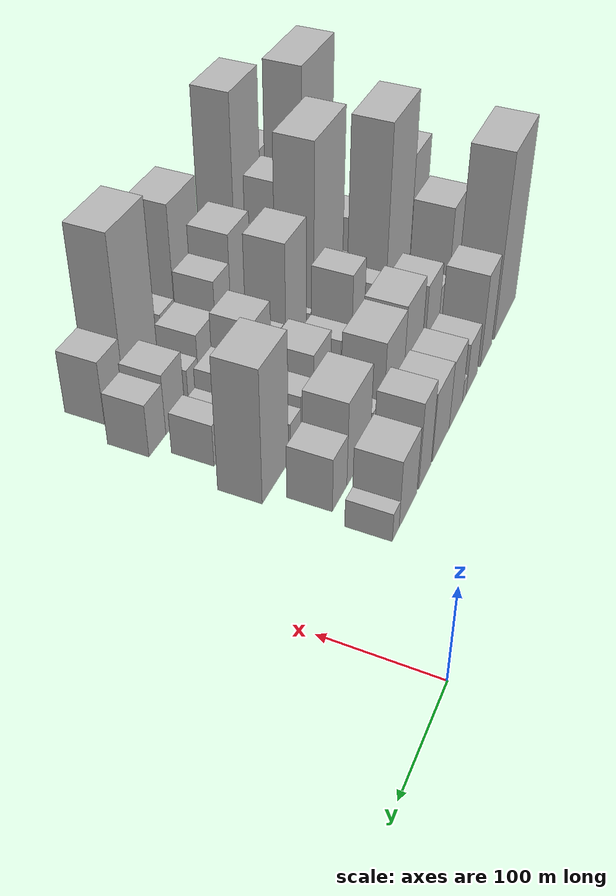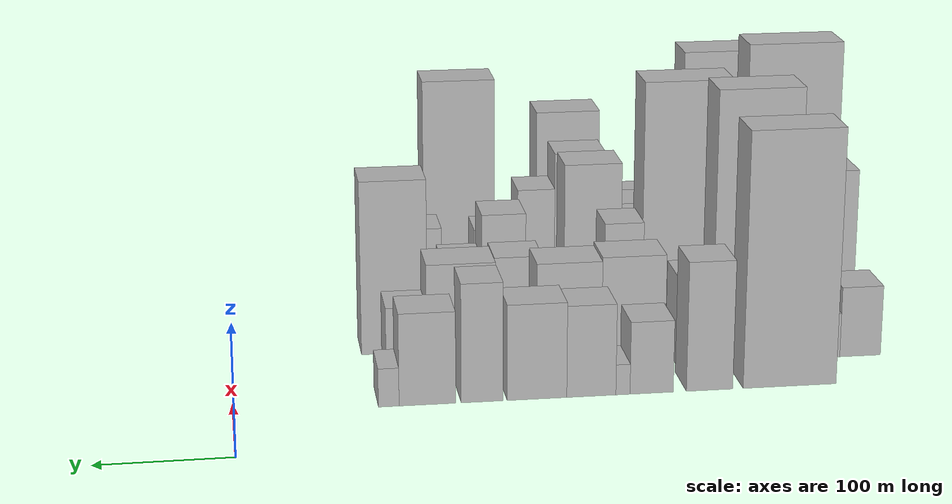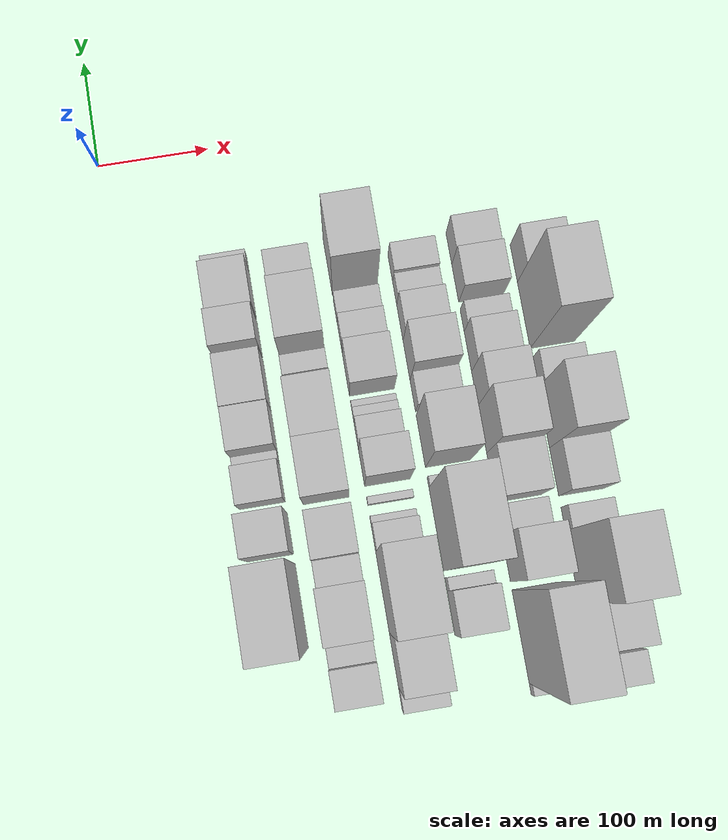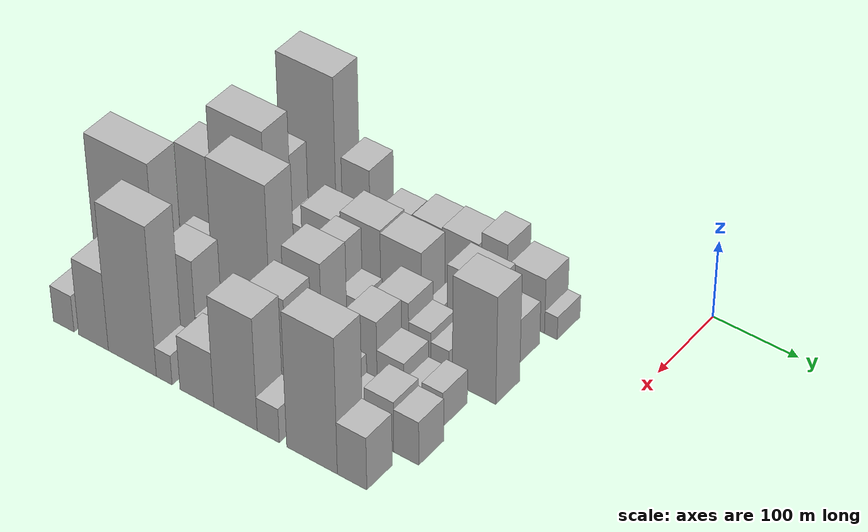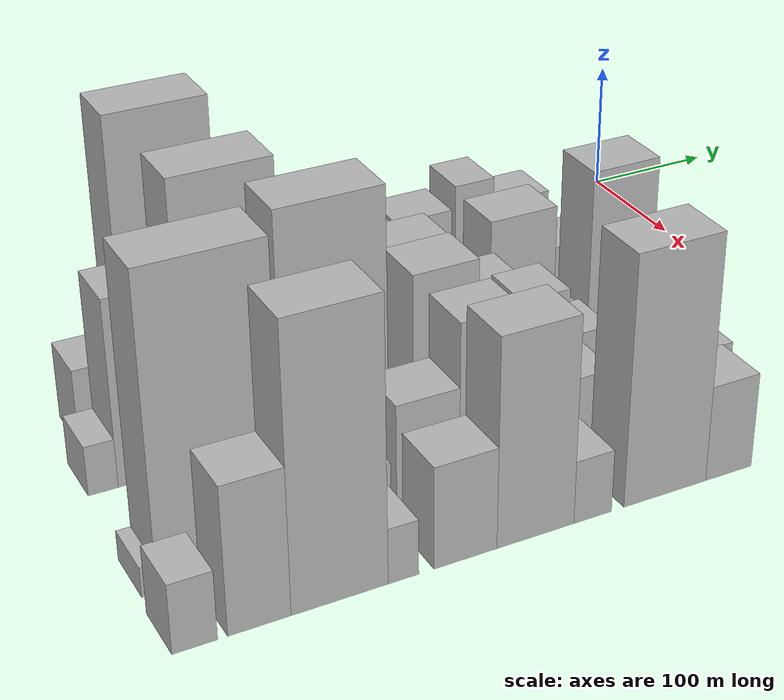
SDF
<sdf version="1.6">
 <world name="default">
  <model name="building_11">
   <static>1</static>
   <pose>100.0000 -417.7875 0 0.000000 0.000000 0.000000</pose>
   <link name="link">
    <pose>0 0 100.50 0 0 0</pose>
    <collision name="collision"><geometry><box><size>40.0000 72.0844 201.0000</size></box></geometry></collision>
    <visual name="visual">
     <cast_shadows>0</cast_shadows>
     <geometry><box><size>40.0000 72.0844 201.0000</size></box></geometry>
     <material>
      <script>
       <uri>model://HANNAS_wall/materials/scripts</uri>
       <uri>model://HANNAS_wall/materials/textures</uri>
       <name>vrc/HANNAS_wall</name>
      </script>
     </material>
    </visual>
   </link>
  </model>
  <model name="building_12">
   <static>1</static>
   <pose>100.0000 -355.9250 0 0.000000 0.000000 0.000000</pose>
   <link name="link">
    <pose>0 0 51.00 0 0 0</pose>
    <collision name="collision"><geometry><box><size>40.0000 35.6405 102.0000</size></box></geometry></collision>
    <visual name="visual">
     <cast_shadows>0</cast_shadows>
     <geometry><box><size>40.0000 35.6405 102.0000</size></box></geometry>
     <material>
      <script>
       <uri>model://HANNAS_wall/materials/scripts</uri>
       <uri>model://HANNAS_wall/materials/textures</uri>
       <name>vrc/HANNAS_wall</name>
      </script>
     </material>
    </visual>
   </link>
  </model>
  <model name="building_13">
   <static>1</static>
   <pose>100.0000 -311.5917 0 0.000000 0.000000 0.000000</pose>
   <link name="link">
    <pose>0 0 28.50 0 0 0</pose>
    <collision name="collision"><geometry><box><size>40.0000 33.0261 57.0000</size></box></geometry></collision>
    <visual name="visual">
     <cast_shadows>0</cast_shadows>
     <geometry><box><size>40.0000 33.0261 57.0000</size></box></geometry>
     <material>
      <script>
       <uri>model://HANNAS_wall/materials/scripts</uri>
       <uri>model://HANNAS_wall/materials/textures</uri>
       <name>vrc/HANNAS_wall</name>
      </script>
     </material>
    </visual>
   </link>
  </model>
  <model name="building_14">
   <static>1</static>
   <pose>100.0000 -289.7027 0 0.000000 0.000000 0.000000</pose>
   <link name="link">
    <pose>0 0 12.00 0 0 0</pose>
    <collision name="collision"><geometry><box><size>40.0000 10.7521 24.0000</size></box></geometry></collision>
    <visual name="visual">
     <cast_shadows>0</cast_shadows>
     <geometry><box><size>40.0000 10.7521 24.0000</size></box></geometry>
     <material>
      <script>
       <uri>model://HANNAS_wall/materials/scripts</uri>
       <uri>model://HANNAS_wall/materials/textures</uri>
       <name>vrc/HANNAS_wall</name>
      </script>
     </material>
    </visual>
   </link>
  </model>
  <model name="building_15">
   <static>1</static>
   <pose>100.0000 -265.7249 0 0.000000 0.000000 0.000000</pose>
   <link name="link">
    <pose>0 0 36.00 0 0 0</pose>
    <collision name="collision"><geometry><box><size>40.0000 37.2034 72.0000</size></box></geometry></collision>
    <visual name="visual">
     <cast_shadows>0</cast_shadows>
     <geometry><box><size>40.0000 37.2034 72.0000</size></box></geometry>
     <material>
      <script>
       <uri>model://HANNAS_wall/materials/scripts</uri>
       <uri>model://HANNAS_wall/materials/textures</uri>
       <name>vrc/HANNAS_wall</name>
      </script>
     </material>
    </visual>
   </link>
  </model>
  <model name="building_16">
   <static>1</static>
   <pose>100.0000 -224.6815 0 0.000000 0.000000 0.000000</pose>
   <link name="link">
    <pose>0 0 37.50 0 0 0</pose>
    <collision name="collision"><geometry><box><size>40.0000 44.8836 75.0000</size></box></geometry></collision>
    <visual name="visual">
     <cast_shadows>0</cast_shadows>
     <geometry><box><size>40.0000 44.8836 75.0000</size></box></geometry>
     <material>
      <script>
       <uri>model://HANNAS_wall/materials/scripts</uri>
       <uri>model://HANNAS_wall/materials/textures</uri>
       <name>vrc/HANNAS_wall</name>
      </script>
     </material>
    </visual>
   </link>
  </model>
  <model name="building_17">
   <static>1</static>
   <pose>100.0000 -183.5330 0 0.000000 0.000000 0.000000</pose>
   <link name="link">
    <pose>0 0 46.50 0 0 0</pose>
    <collision name="collision"><geometry><box><size>40.0000 31.4134 93.0000</size></box></geometry></collision>
    <visual name="visual">
     <cast_shadows>0</cast_shadows>
     <geometry><box><size>40.0000 31.4134 93.0000</size></box></geometry>
     <material>
      <script>
       <uri>model://HANNAS_wall/materials/scripts</uri>
       <uri>model://HANNAS_wall/materials/textures</uri>
       <name>vrc/HANNAS_wall</name>
      </script>
     </material>
    </visual>
   </link>
  </model>
  <model name="building_18">
   <static>1</static>
   <pose>100.0000 -142.7192 0 0.000000 0.000000 0.000000</pose>
   <link name="link">
    <pose>0 0 36.00 0 0 0</pose>
    <collision name="collision"><geometry><box><size>40.0000 42.2141 72.0000</size></box></geometry></collision>
    <visual name="visual">
     <cast_shadows>0</cast_shadows>
     <geometry><box><size>40.0000 42.2141 72.0000</size></box></geometry>
     <material>
      <script>
       <uri>model://HANNAS_wall/materials/scripts</uri>
       <uri>model://HANNAS_wall/materials/textures</uri>
       <name>vrc/HANNAS_wall</name>
      </script>
     </material>
    </visual>
   </link>
  </model>
  <model name="building_19">
   <static>1</static>
   <pose>100.0000 -113.9480 0 0.000000 0.000000 0.000000</pose>
   <link name="link">
    <pose>0 0 15.00 0 0 0</pose>
    <collision name="collision"><geometry><box><size>40.0000 15.3283 30.0000</size></box></geometry></collision>
    <visual name="visual">
     <cast_shadows>0</cast_shadows>
     <geometry><box><size>40.0000 15.3283 30.0000</size></box></geometry>
     <material>
      <script>
       <uri>model://HANNAS_wall/materials/scripts</uri>
       <uri>model://HANNAS_wall/materials/textures</uri>
       <name>vrc/HANNAS_wall</name>
      </script>
     </material>
    </visual>
   </link>
  </model>
  <model name="building_61">
   <static>1</static>
   <pose>155.0000 -488.7438 0 0.000000 0.000000 0.000000</pose>
   <link name="link">
    <pose>0 0 28.50 0 0 0</pose>
    <collision name="collision"><geometry><box><size>40.0000 32.7782 57.0000</size></box></geometry></collision>
    <visual name="visual">
     <cast_shadows>0</cast_shadows>
     <geometry><box><size>40.0000 32.7782 57.0000</size></box></geometry>
     <material>
      <script>
       <uri>model://HANNAS_wall/materials/scripts</uri>
       <uri>model://HANNAS_wall/materials/textures</uri>
       <name>vrc/HANNAS_wall</name>
      </script>
     </material>
    </visual>
   </link>
  </model>
  <model name="building_62">
   <static>1</static>
   <pose>155.0000 -462.2147 0 0.000000 0.000000 0.000000</pose>
   <link name="link">
    <pose>0 0 18.00 0 0 0</pose>
    <collision name="collision"><geometry><box><size>40.0000 20.2800 36.0000</size></box></geometry></collision>
    <visual name="visual">
     <cast_shadows>0</cast_shadows>
     <geometry><box><size>40.0000 20.2800 36.0000</size></box></geometry>
     <material>
      <script>
       <uri>model://HANNAS_wall/materials/scripts</uri>
       <uri>model://HANNAS_wall/materials/textures</uri>
       <name>vrc/HANNAS_wall</name>
      </script>
     </material>
    </visual>
   </link>
  </model>
  <model name="building_63">
   <static>1</static>
   <pose>155.0000 -429.1006 0 0.000000 0.000000 0.000000</pose>
   <link name="link">
    <pose>0 0 58.50 0 0 0</pose>
    <collision name="collision"><geometry><box><size>40.0000 45.9483 117.0000</size></box></geometry></collision>
    <visual name="visual">
     <cast_shadows>0</cast_shadows>
     <geometry><box><size>40.0000 45.9483 117.0000</size></box></geometry>
     <material>
      <script>
       <uri>model://HANNAS_wall/materials/scripts</uri>
       <uri>model://HANNAS_wall/materials/textures</uri>
       <name>vrc/HANNAS_wall</name>
      </script>
     </material>
    </visual>
   </link>
  </model>
  <model name="building_64">
   <static>1</static>
   <pose>155.0000 -394.5628 0 0.000000 0.000000 0.000000</pose>
   <link name="link">
    <pose>0 0 21.00 0 0 0</pose>
    <collision name="collision"><geometry><box><size>40.0000 23.1272 42.0000</size></box></geometry></collision>
    <visual name="visual">
     <cast_shadows>0</cast_shadows>
     <geometry><box><size>40.0000 23.1272 42.0000</size></box></geometry>
     <material>
      <script>
       <uri>model://HANNAS_wall/materials/scripts</uri>
       <uri>model://HANNAS_wall/materials/textures</uri>
       <name>vrc/HANNAS_wall</name>
      </script>
     </material>
    </visual>
   </link>
  </model>
  <model name="building_65">
   <static>1</static>
   <pose>155.0000 -362.5040 0 0.000000 0.000000 0.000000</pose>
   <link name="link">
    <pose>0 0 36.00 0 0 0</pose>
    <collision name="collision"><geometry><box><size>40.0000 40.9906 72.0000</size></box></geometry></collision>
    <visual name="visual">
     <cast_shadows>0</cast_shadows>
     <geometry><box><size>40.0000 40.9906 72.0000</size></box></geometry>
     <material>
      <script>
       <uri>model://HANNAS_wall/materials/scripts</uri>
       <uri>model://HANNAS_wall/materials/textures</uri>
       <name>vrc/HANNAS_wall</name>
      </script>
     </material>
    </visual>
   </link>
  </model>
  <model name="building_66">
   <static>1</static>
   <pose>155.0000 -308.1487 0 0.000000 0.000000 0.000000</pose>
   <link name="link">
    <pose>0 0 45.00 0 0 0</pose>
    <collision name="collision"><geometry><box><size>40.0000 49.7200 90.0000</size></box></geometry></collision>
    <visual name="visual">
     <cast_shadows>0</cast_shadows>
     <geometry><box><size>40.0000 49.7200 90.0000</size></box></geometry>
     <material>
      <script>
       <uri>model://HANNAS_wall/materials/scripts</uri>
       <uri>model://HANNAS_wall/materials/textures</uri>
       <name>vrc/HANNAS_wall</name>
      </script>
     </material>
    </visual>
   </link>
  </model>
  <model name="building_67">
   <static>1</static>
   <pose>155.0000 -258.0169 0 0.000000 0.000000 0.000000</pose>
   <link name="link">
    <pose>0 0 43.50 0 0 0</pose>
    <collision name="collision"><geometry><box><size>40.0000 50.5435 87.0000</size></box></geometry></collision>
    <visual name="visual">
     <cast_shadows>0</cast_shadows>
     <geometry><box><size>40.0000 50.5435 87.0000</size></box></geometry>
     <material>
      <script>
       <uri>model://HANNAS_wall/materials/scripts</uri>
       <uri>model://HANNAS_wall/materials/textures</uri>
       <name>vrc/HANNAS_wall</name>
      </script>
     </material>
    </visual>
   </link>
  </model>
  <model name="building_68">
   <static>1</static>
   <pose>155.0000 -213.8691 0 0.000000 0.000000 0.000000</pose>
   <link name="link">
    <pose>0 0 16.50 0 0 0</pose>
    <collision name="collision"><geometry><box><size>40.0000 17.7522 33.0000</size></box></geometry></collision>
    <visual name="visual">
     <cast_shadows>0</cast_shadows>
     <geometry><box><size>40.0000 17.7522 33.0000</size></box></geometry>
     <material>
      <script>
       <uri>model://HANNAS_wall/materials/scripts</uri>
       <uri>model://HANNAS_wall/materials/textures</uri>
       <name>vrc/HANNAS_wall</name>
      </script>
     </material>
    </visual>
   </link>
  </model>
  <model name="building_69">
   <static>1</static>
   <pose>155.0000 -174.5108 0 0.000000 0.000000 0.000000</pose>
   <link name="link">
    <pose>0 0 45.00 0 0 0</pose>
    <collision name="collision"><geometry><box><size>40.0000 52.9642 90.0000</size></box></geometry></collision>
    <visual name="visual">
     <cast_shadows>0</cast_shadows>
     <geometry><box><size>40.0000 52.9642 90.0000</size></box></geometry>
     <material>
      <script>
       <uri>model://HANNAS_wall/materials/scripts</uri>
       <uri>model://HANNAS_wall/materials/textures</uri>
       <name>vrc/HANNAS_wall</name>
      </script>
     </material>
    </visual>
   </link>
  </model>
  <model name="building_70">
   <static>1</static>
   <pose>155.0000 -132.5153 0 0.000000 0.000000 0.000000</pose>
   <link name="link">
    <pose>0 0 28.50 0 0 0</pose>
    <collision name="collision"><geometry><box><size>40.0000 31.0269 57.0000</size></box></geometry></collision>
    <visual name="visual">
     <cast_shadows>0</cast_shadows>
     <geometry><box><size>40.0000 31.0269 57.0000</size></box></geometry>
     <material>
      <script>
       <uri>model://HANNAS_wall/materials/scripts</uri>
       <uri>model://HANNAS_wall/materials/textures</uri>
       <name>vrc/HANNAS_wall</name>
      </script>
     </material>
    </visual>
   </link>
  </model>
  <model name="building_115">
   <static>1</static>
   <pose>210.0000 -507.9227 0 0.000000 0.000000 0.000000</pose>
   <link name="link">
    <pose>0 0 18.00 0 0 0</pose>
    <collision name="collision"><geometry><box><size>40.0000 19.6754 36.0000</size></box></geometry></collision>
    <visual name="visual">
     <cast_shadows>0</cast_shadows>
     <geometry><box><size>40.0000 19.6754 36.0000</size></box></geometry>
     <material>
      <script>
       <uri>model://HANNAS_wall/materials/scripts</uri>
       <uri>model://HANNAS_wall/materials/textures</uri>
       <name>vrc/HANNAS_wall</name>
      </script>
     </material>
    </visual>
   </link>
  </model>
  <model name="building_116">
   <static>1</static>
   <pose>210.0000 -475.3395 0 0.000000 0.000000 0.000000</pose>
   <link name="link">
    <pose>0 0 67.50 0 0 0</pose>
    <collision name="collision"><geometry><box><size>40.0000 45.4910 135.0000</size></box></geometry></collision>
    <visual name="visual">
     <cast_shadows>0</cast_shadows>
     <geometry><box><size>40.0000 45.4910 135.0000</size></box></geometry>
     <material>
      <script>
       <uri>model://HANNAS_wall/materials/scripts</uri>
       <uri>model://HANNAS_wall/materials/textures</uri>
       <name>vrc/HANNAS_wall</name>
      </script>
     </material>
    </visual>
   </link>
  </model>
  <model name="building_117">
   <static>1</static>
   <pose>210.0000 -418.0287 0 0.000000 0.000000 0.000000</pose>
   <link name="link">
    <pose>0 0 102.00 0 0 0</pose>
    <collision name="collision"><geometry><box><size>40.0000 69.1306 204.0000</size></box></geometry></collision>
    <visual name="visual">
     <cast_shadows>0</cast_shadows>
     <geometry><box><size>40.0000 69.1306 204.0000</size></box></geometry>
     <material>
      <script>
       <uri>model://HANNAS_wall/materials/scripts</uri>
       <uri>model://HANNAS_wall/materials/textures</uri>
       <name>vrc/HANNAS_wall</name>
      </script>
     </material>
    </visual>
   </link>
  </model>
  <model name="building_118">
   <static>1</static>
   <pose>210.0000 -371.8410 0 0.000000 0.000000 0.000000</pose>
   <link name="link">
    <pose>0 0 22.50 0 0 0</pose>
    <collision name="collision"><geometry><box><size>40.0000 23.2447 45.0000</size></box></geometry></collision>
    <visual name="visual">
     <cast_shadows>0</cast_shadows>
     <geometry><box><size>40.0000 23.2447 45.0000</size></box></geometry>
     <material>
      <script>
       <uri>model://HANNAS_wall/materials/scripts</uri>
       <uri>model://HANNAS_wall/materials/textures</uri>
       <name>vrc/HANNAS_wall</name>
      </script>
     </material>
    </visual>
   </link>
  </model>
  <model name="building_119">
   <static>1</static>
   <pose>210.0000 -356.6154 0 0.000000 0.000000 0.000000</pose>
   <link name="link">
    <pose>0 0 9.00 0 0 0</pose>
    <collision name="collision"><geometry><box><size>40.0000 7.2066 18.0000</size></box></geometry></collision>
    <visual name="visual">
     <cast_shadows>0</cast_shadows>
     <geometry><box><size>40.0000 7.2066 18.0000</size></box></geometry>
     <material>
      <script>
       <uri>model://HANNAS_wall/materials/scripts</uri>
       <uri>model://HANNAS_wall/materials/textures</uri>
       <name>vrc/HANNAS_wall</name>
      </script>
     </material>
    </visual>
   </link>
  </model>
  <model name="building_120">
   <static>1</static>
   <pose>210.0000 -339.5552 0 0.000000 0.000000 0.000000</pose>
   <link name="link">
    <pose>0 0 7.50 0 0 0</pose>
    <collision name="collision"><geometry><box><size>40.0000 6.9137 15.0000</size></box></geometry></collision>
    <visual name="visual">
     <cast_shadows>0</cast_shadows>
     <geometry><box><size>40.0000 6.9137 15.0000</size></box></geometry>
     <material>
      <script>
       <uri>model://HANNAS_wall/materials/scripts</uri>
       <uri>model://HANNAS_wall/materials/textures</uri>
       <name>vrc/HANNAS_wall</name>
      </script>
     </material>
    </visual>
   </link>
  </model>
  <model name="building_121">
   <static>1</static>
   <pose>210.0000 -310.5676 0 0.000000 0.000000 0.000000</pose>
   <link name="link">
    <pose>0 0 49.50 0 0 0</pose>
    <collision name="collision"><geometry><box><size>40.0000 31.0616 99.0000</size></box></geometry></collision>
    <visual name="visual">
     <cast_shadows>0</cast_shadows>
     <geometry><box><size>40.0000 31.0616 99.0000</size></box></geometry>
     <material>
      <script>
       <uri>model://HANNAS_wall/materials/scripts</uri>
       <uri>model://HANNAS_wall/materials/textures</uri>
       <name>vrc/HANNAS_wall</name>
      </script>
     </material>
    </visual>
   </link>
  </model>
  <model name="building_122">
   <static>1</static>
   <pose>210.0000 -282.2930 0 0.000000 0.000000 0.000000</pose>
   <link name="link">
    <pose>0 0 22.50 0 0 0</pose>
    <collision name="collision"><geometry><box><size>40.0000 25.4875 45.0000</size></box></geometry></collision>
    <visual name="visual">
     <cast_shadows>0</cast_shadows>
     <geometry><box><size>40.0000 25.4875 45.0000</size></box></geometry>
     <material>
      <script>
       <uri>model://HANNAS_wall/materials/scripts</uri>
       <uri>model://HANNAS_wall/materials/textures</uri>
       <name>vrc/HANNAS_wall</name>
      </script>
     </material>
    </visual>
   </link>
  </model>
  <model name="building_123">
   <static>1</static>
   <pose>210.0000 -264.1106 0 0.000000 0.000000 0.000000</pose>
   <link name="link">
    <pose>0 0 12.00 0 0 0</pose>
    <collision name="collision"><geometry><box><size>40.0000 10.8773 24.0000</size></box></geometry></collision>
    <visual name="visual">
     <cast_shadows>0</cast_shadows>
     <geometry><box><size>40.0000 10.8773 24.0000</size></box></geometry>
     <material>
      <script>
       <uri>model://HANNAS_wall/materials/scripts</uri>
       <uri>model://HANNAS_wall/materials/textures</uri>
       <name>vrc/HANNAS_wall</name>
      </script>
     </material>
    </visual>
   </link>
  </model>
  <model name="building_124">
   <static>1</static>
   <pose>210.0000 -255.1590 0 0.000000 0.000000 0.000000</pose>
   <link name="link">
    <pose>0 0 7.50 0 0 0</pose>
    <collision name="collision"><geometry><box><size>40.0000 7.0258 15.0000</size></box></geometry></collision>
    <visual name="visual">
     <cast_shadows>0</cast_shadows>
     <geometry><box><size>40.0000 7.0258 15.0000</size></box></geometry>
     <material>
      <script>
       <uri>model://HANNAS_wall/materials/scripts</uri>
       <uri>model://HANNAS_wall/materials/textures</uri>
       <name>vrc/HANNAS_wall</name>
      </script>
     </material>
    </visual>
   </link>
  </model>
  <model name="building_125">
   <static>1</static>
   <pose>210.0000 -226.5296 0 0.000000 0.000000 0.000000</pose>
   <link name="link">
    <pose>0 0 37.50 0 0 0</pose>
    <collision name="collision"><geometry><box><size>40.0000 38.2331 75.0000</size></box></geometry></collision>
    <visual name="visual">
     <cast_shadows>0</cast_shadows>
     <geometry><box><size>40.0000 38.2331 75.0000</size></box></geometry>
     <material>
      <script>
       <uri>model://HANNAS_wall/materials/scripts</uri>
       <uri>model://HANNAS_wall/materials/textures</uri>
       <name>vrc/HANNAS_wall</name>
      </script>
     </material>
    </visual>
   </link>
  </model>
  <model name="building_126">
   <static>1</static>
   <pose>210.0000 -194.0156 0 0.000000 0.000000 0.000000</pose>
   <link name="link">
    <pose>0 0 25.50 0 0 0</pose>
    <collision name="collision"><geometry><box><size>40.0000 26.7947 51.0000</size></box></geometry></collision>
    <visual name="visual">
     <cast_shadows>0</cast_shadows>
     <geometry><box><size>40.0000 26.7947 51.0000</size></box></geometry>
     <material>
      <script>
       <uri>model://HANNAS_wall/materials/scripts</uri>
       <uri>model://HANNAS_wall/materials/textures</uri>
       <name>vrc/HANNAS_wall</name>
      </script>
     </material>
    </visual>
   </link>
  </model>
  <model name="building_127">
   <static>1</static>
   <pose>210.0000 -169.5033 0 0.000000 0.000000 0.000000</pose>
   <link name="link">
    <pose>0 0 19.50 0 0 0</pose>
    <collision name="collision"><geometry><box><size>40.0000 22.2299 39.0000</size></box></geometry></collision>
    <visual name="visual">
     <cast_shadows>0</cast_shadows>
     <geometry><box><size>40.0000 22.2299 39.0000</size></box></geometry>
     <material>
      <script>
       <uri>model://HANNAS_wall/materials/scripts</uri>
       <uri>model://HANNAS_wall/materials/textures</uri>
       <name>vrc/HANNAS_wall</name>
      </script>
     </material>
    </visual>
   </link>
  </model>
  <model name="building_128">
   <static>1</static>
   <pose>210.0000 -128.3970 0 0.000000 0.000000 0.000000</pose>
   <link name="link">
    <pose>0 0 70.50 0 0 0</pose>
    <collision name="collision"><geometry><box><size>40.0000 51.9827 141.0000</size></box></geometry></collision>
    <visual name="visual">
     <cast_shadows>0</cast_shadows>
     <geometry><box><size>40.0000 51.9827 141.0000</size></box></geometry>
     <material>
      <script>
       <uri>model://HANNAS_wall/materials/scripts</uri>
       <uri>model://HANNAS_wall/materials/textures</uri>
       <name>vrc/HANNAS_wall</name>
      </script>
     </material>
    </visual>
   </link>
  </model>
  <model name="building_169">
   <static>1</static>
   <pose>265.0000 -444.9240 0 0.000000 0.000000 0.000000</pose>
   <link name="link">
    <pose>0 0 33.00 0 0 0</pose>
    <collision name="collision"><geometry><box><size>40.0000 37.9621 66.0000</size></box></geometry></collision>
    <visual name="visual">
     <cast_shadows>0</cast_shadows>
     <geometry><box><size>40.0000 37.9621 66.0000</size></box></geometry>
     <material>
      <script>
       <uri>model://HANNAS_wall/materials/scripts</uri>
       <uri>model://HANNAS_wall/materials/textures</uri>
       <name>vrc/HANNAS_wall</name>
      </script>
     </material>
    </visual>
   </link>
  </model>
  <model name="building_170">
   <static>1</static>
   <pose>265.0000 -420.4263 0 0.000000 0.000000 0.000000</pose>
   <link name="link">
    <pose>0 0 13.50 0 0 0</pose>
    <collision name="collision"><geometry><box><size>40.0000 11.0332 27.0000</size></box></geometry></collision>
    <visual name="visual">
     <cast_shadows>0</cast_shadows>
     <geometry><box><size>40.0000 11.0332 27.0000</size></box></geometry>
     <material>
      <script>
       <uri>model://HANNAS_wall/materials/scripts</uri>
       <uri>model://HANNAS_wall/materials/textures</uri>
       <name>vrc/HANNAS_wall</name>
      </script>
     </material>
    </visual>
   </link>
  </model>
  <model name="building_171">
   <static>1</static>
   <pose>265.0000 -372.5390 0 0.000000 0.000000 0.000000</pose>
   <link name="link">
    <pose>0 0 99.00 0 0 0</pose>
    <collision name="collision"><geometry><box><size>40.0000 72.7414 198.0000</size></box></geometry></collision>
    <visual name="visual">
     <cast_shadows>0</cast_shadows>
     <geometry><box><size>40.0000 72.7414 198.0000</size></box></geometry>
     <material>
      <script>
       <uri>model://HANNAS_wall/materials/scripts</uri>
       <uri>model://HANNAS_wall/materials/textures</uri>
       <name>vrc/HANNAS_wall</name>
      </script>
     </material>
    </visual>
   </link>
  </model>
  <model name="building_172">
   <static>1</static>
   <pose>265.0000 -331.8487 0 0.000000 0.000000 0.000000</pose>
   <link name="link">
    <pose>0 0 9.00 0 0 0</pose>
    <collision name="collision"><geometry><box><size>40.0000 8.6392 18.0000</size></box></geometry></collision>
    <visual name="visual">
     <cast_shadows>0</cast_shadows>
     <geometry><box><size>40.0000 8.6392 18.0000</size></box></geometry>
     <material>
      <script>
       <uri>model://HANNAS_wall/materials/scripts</uri>
       <uri>model://HANNAS_wall/materials/textures</uri>
       <name>vrc/HANNAS_wall</name>
      </script>
     </material>
    </visual>
   </link>
  </model>
  <model name="building_173">
   <static>1</static>
   <pose>265.0000 -295.2152 0 0.000000 0.000000 0.000000</pose>
   <link name="link">
    <pose>0 0 66.00 0 0 0</pose>
    <collision name="collision"><geometry><box><size>40.0000 46.6279 132.0000</size></box></geometry></collision>
    <visual name="visual">
     <cast_shadows>0</cast_shadows>
     <geometry><box><size>40.0000 46.6279 132.0000</size></box></geometry>
     <material>
      <script>
       <uri>model://HANNAS_wall/materials/scripts</uri>
       <uri>model://HANNAS_wall/materials/textures</uri>
       <name>vrc/HANNAS_wall</name>
      </script>
     </material>
    </visual>
   </link>
  </model>
  <model name="building_174">
   <static>1</static>
   <pose>265.0000 -254.6478 0 0.000000 0.000000 0.000000</pose>
   <link name="link">
    <pose>0 0 24.00 0 0 0</pose>
    <collision name="collision"><geometry><box><size>40.0000 28.5069 48.0000</size></box></geometry></collision>
    <visual name="visual">
     <cast_shadows>0</cast_shadows>
     <geometry><box><size>40.0000 28.5069 48.0000</size></box></geometry>
     <material>
      <script>
       <uri>model://HANNAS_wall/materials/scripts</uri>
       <uri>model://HANNAS_wall/materials/textures</uri>
       <name>vrc/HANNAS_wall</name>
      </script>
     </material>
    </visual>
   </link>
  </model>
  <model name="building_175">
   <static>1</static>
   <pose>265.0000 -222.5215 0 0.000000 0.000000 0.000000</pose>
   <link name="link">
    <pose>0 0 46.50 0 0 0</pose>
    <collision name="collision"><geometry><box><size>40.0000 35.7457 93.0000</size></box></geometry></collision>
    <visual name="visual">
     <cast_shadows>0</cast_shadows>
     <geometry><box><size>40.0000 35.7457 93.0000</size></box></geometry>
     <material>
      <script>
       <uri>model://HANNAS_wall/materials/scripts</uri>
       <uri>model://HANNAS_wall/materials/textures</uri>
       <name>vrc/HANNAS_wall</name>
      </script>
     </material>
    </visual>
   </link>
  </model>
  <model name="building_176">
   <static>1</static>
   <pose>265.0000 -188.3390 0 0.000000 0.000000 0.000000</pose>
   <link name="link">
    <pose>0 0 28.50 0 0 0</pose>
    <collision name="collision"><geometry><box><size>40.0000 32.6193 57.0000</size></box></geometry></collision>
    <visual name="visual">
     <cast_shadows>0</cast_shadows>
     <geometry><box><size>40.0000 32.6193 57.0000</size></box></geometry>
     <material>
      <script>
       <uri>model://HANNAS_wall/materials/scripts</uri>
       <uri>model://HANNAS_wall/materials/textures</uri>
       <name>vrc/HANNAS_wall</name>
      </script>
     </material>
    </visual>
   </link>
  </model>
  <model name="building_177">
   <static>1</static>
   <pose>265.0000 -161.3713 0 0.000000 0.000000 0.000000</pose>
   <link name="link">
    <pose>0 0 18.00 0 0 0</pose>
    <collision name="collision"><geometry><box><size>40.0000 21.3161 36.0000</size></box></geometry></collision>
    <visual name="visual">
     <cast_shadows>0</cast_shadows>
     <geometry><box><size>40.0000 21.3161 36.0000</size></box></geometry>
     <material>
      <script>
       <uri>model://HANNAS_wall/materials/scripts</uri>
       <uri>model://HANNAS_wall/materials/textures</uri>
       <name>vrc/HANNAS_wall</name>
      </script>
     </material>
    </visual>
   </link>
  </model>
  <model name="building_178">
   <static>1</static>
   <pose>265.0000 -138.1301 0 0.000000 0.000000 0.000000</pose>
   <link name="link">
    <pose>0 0 22.50 0 0 0</pose>
    <collision name="collision"><geometry><box><size>40.0000 25.1663 45.0000</size></box></geometry></collision>
    <visual name="visual">
     <cast_shadows>0</cast_shadows>
     <geometry><box><size>40.0000 25.1663 45.0000</size></box></geometry>
     <material>
      <script>
       <uri>model://HANNAS_wall/materials/scripts</uri>
       <uri>model://HANNAS_wall/materials/textures</uri>
       <name>vrc/HANNAS_wall</name>
      </script>
     </material>
    </visual>
   </link>
  </model>
  <model name="building_223">
   <static>1</static>
   <pose>320.0000 -518.3138 0 0.000000 0.000000 0.000000</pose>
   <link name="link">
    <pose>0 0 10.50 0 0 0</pose>
    <collision name="collision"><geometry><box><size>40.0000 9.3648 21.0000</size></box></geometry></collision>
    <visual name="visual">
     <cast_shadows>0</cast_shadows>
     <geometry><box><size>40.0000 9.3648 21.0000</size></box></geometry>
     <material>
      <script>
       <uri>model://HANNAS_wall/materials/scripts</uri>
       <uri>model://HANNAS_wall/materials/textures</uri>
       <name>vrc/HANNAS_wall</name>
      </script>
     </material>
    </visual>
   </link>
  </model>
  <model name="building_224">
   <static>1</static>
   <pose>320.0000 -473.9259 0 0.000000 0.000000 0.000000</pose>
   <link name="link">
    <pose>0 0 106.50 0 0 0</pose>
    <collision name="collision"><geometry><box><size>40.0000 79.4109 213.0000</size></box></geometry></collision>
    <visual name="visual">
     <cast_shadows>0</cast_shadows>
     <geometry><box><size>40.0000 79.4109 213.0000</size></box></geometry>
     <material>
      <script>
       <uri>model://HANNAS_wall/materials/scripts</uri>
       <uri>model://HANNAS_wall/materials/textures</uri>
       <name>vrc/HANNAS_wall</name>
      </script>
     </material>
    </visual>
   </link>
  </model>
  <model name="building_225">
   <static>1</static>
   <pose>320.0000 -406.7503 0 0.000000 0.000000 0.000000</pose>
   <link name="link">
    <pose>0 0 57.00 0 0 0</pose>
    <collision name="collision"><geometry><box><size>40.0000 40.9402 114.0000</size></box></geometry></collision>
    <visual name="visual">
     <cast_shadows>0</cast_shadows>
     <geometry><box><size>40.0000 40.9402 114.0000</size></box></geometry>
     <material>
      <script>
       <uri>model://HANNAS_wall/materials/scripts</uri>
       <uri>model://HANNAS_wall/materials/textures</uri>
       <name>vrc/HANNAS_wall</name>
      </script>
     </material>
    </visual>
   </link>
  </model>
  <model name="building_226">
   <static>1</static>
   <pose>320.0000 -374.3552 0 0.000000 0.000000 0.000000</pose>
   <link name="link">
    <pose>0 0 21.00 0 0 0</pose>
    <collision name="collision"><geometry><box><size>40.0000 23.8499 42.0000</size></box></geometry></collision>
    <visual name="visual">
     <cast_shadows>0</cast_shadows>
     <geometry><box><size>40.0000 23.8499 42.0000</size></box></geometry>
     <material>
      <script>
       <uri>model://HANNAS_wall/materials/scripts</uri>
       <uri>model://HANNAS_wall/materials/textures</uri>
       <name>vrc/HANNAS_wall</name>
      </script>
     </material>
    </visual>
   </link>
  </model>
  <model name="building_227">
   <static>1</static>
   <pose>320.0000 -336.7907 0 0.000000 0.000000 0.000000</pose>
   <link name="link">
    <pose>0 0 40.50 0 0 0</pose>
    <collision name="collision"><geometry><box><size>40.0000 43.2791 81.0000</size></box></geometry></collision>
    <visual name="visual">
     <cast_shadows>0</cast_shadows>
     <geometry><box><size>40.0000 43.2791 81.0000</size></box></geometry>
     <material>
      <script>
       <uri>model://HANNAS_wall/materials/scripts</uri>
       <uri>model://HANNAS_wall/materials/textures</uri>
       <name>vrc/HANNAS_wall</name>
      </script>
     </material>
    </visual>
   </link>
  </model>
  <model name="building_228">
   <static>1</static>
   <pose>320.0000 -293.9660 0 0.000000 0.000000 0.000000</pose>
   <link name="link">
    <pose>0 0 63.00 0 0 0</pose>
    <collision name="collision"><geometry><box><size>40.0000 42.3704 126.0000</size></box></geometry></collision>
    <visual name="visual">
     <cast_shadows>0</cast_shadows>
     <geometry><box><size>40.0000 42.3704 126.0000</size></box></geometry>
     <material>
      <script>
       <uri>model://HANNAS_wall/materials/scripts</uri>
       <uri>model://HANNAS_wall/materials/textures</uri>
       <name>vrc/HANNAS_wall</name>
      </script>
     </material>
    </visual>
   </link>
  </model>
  <model name="building_229">
   <static>1</static>
   <pose>320.0000 -257.2712 0 0.000000 0.000000 0.000000</pose>
   <link name="link">
    <pose>0 0 48.00 0 0 0</pose>
    <collision name="collision"><geometry><box><size>40.0000 31.0191 96.0000</size></box></geometry></collision>
    <visual name="visual">
     <cast_shadows>0</cast_shadows>
     <geometry><box><size>40.0000 31.0191 96.0000</size></box></geometry>
     <material>
      <script>
       <uri>model://HANNAS_wall/materials/scripts</uri>
       <uri>model://HANNAS_wall/materials/textures</uri>
       <name>vrc/HANNAS_wall</name>
      </script>
     </material>
    </visual>
   </link>
  </model>
  <model name="building_230">
   <static>1</static>
   <pose>320.0000 -223.6050 0 0.000000 0.000000 0.000000</pose>
   <link name="link">
    <pose>0 0 31.50 0 0 0</pose>
    <collision name="collision"><geometry><box><size>40.0000 36.3133 63.0000</size></box></geometry></collision>
    <visual name="visual">
     <cast_shadows>0</cast_shadows>
     <geometry><box><size>40.0000 36.3133 63.0000</size></box></geometry>
     <material>
      <script>
       <uri>model://HANNAS_wall/materials/scripts</uri>
       <uri>model://HANNAS_wall/materials/textures</uri>
       <name>vrc/HANNAS_wall</name>
      </script>
     </material>
    </visual>
   </link>
  </model>
  <model name="building_231">
   <static>1</static>
   <pose>320.0000 -195.2656 0 0.000000 0.000000 0.000000</pose>
   <link name="link">
    <pose>0 0 19.50 0 0 0</pose>
    <collision name="collision"><geometry><box><size>40.0000 20.3655 39.0000</size></box></geometry></collision>
    <visual name="visual">
     <cast_shadows>0</cast_shadows>
     <geometry><box><size>40.0000 20.3655 39.0000</size></box></geometry>
     <material>
      <script>
       <uri>model://HANNAS_wall/materials/scripts</uri>
       <uri>model://HANNAS_wall/materials/textures</uri>
       <name>vrc/HANNAS_wall</name>
      </script>
     </material>
    </visual>
   </link>
  </model>
  <model name="building_232">
   <static>1</static>
   <pose>320.0000 -160.7234 0 0.000000 0.000000 0.000000</pose>
   <link name="link">
    <pose>0 0 33.00 0 0 0</pose>
    <collision name="collision"><geometry><box><size>40.0000 34.7189 66.0000</size></box></geometry></collision>
    <visual name="visual">
     <cast_shadows>0</cast_shadows>
     <geometry><box><size>40.0000 34.7189 66.0000</size></box></geometry>
     <material>
      <script>
       <uri>model://HANNAS_wall/materials/scripts</uri>
       <uri>model://HANNAS_wall/materials/textures</uri>
       <name>vrc/HANNAS_wall</name>
      </script>
     </material>
    </visual>
   </link>
  </model>
  <model name="building_233">
   <static>1</static>
   <pose>320.0000 -128.5059 0 0.000000 0.000000 0.000000</pose>
   <link name="link">
    <pose>0 0 28.50 0 0 0</pose>
    <collision name="collision"><geometry><box><size>40.0000 29.7161 57.0000</size></box></geometry></collision>
    <visual name="visual">
     <cast_shadows>0</cast_shadows>
     <geometry><box><size>40.0000 29.7161 57.0000</size></box></geometry>
     <material>
      <script>
       <uri>model://HANNAS_wall/materials/scripts</uri>
       <uri>model://HANNAS_wall/materials/textures</uri>
       <name>vrc/HANNAS_wall</name>
      </script>
     </material>
    </visual>
   </link>
  </model>
  <model name="building_275">
   <static>1</static>
   <pose>375.0000 -512.1007 0 0.000000 0.000000 0.000000</pose>
   <link name="link">
    <pose>0 0 24.00 0 0 0</pose>
    <collision name="collision"><geometry><box><size>40.0000 27.2142 48.0000</size></box></geometry></collision>
    <visual name="visual">
     <cast_shadows>0</cast_shadows>
     <geometry><box><size>40.0000 27.2142 48.0000</size></box></geometry>
     <material>
      <script>
       <uri>model://HANNAS_wall/materials/scripts</uri>
       <uri>model://HANNAS_wall/materials/textures</uri>
       <name>vrc/HANNAS_wall</name>
      </script>
     </material>
    </visual>
   </link>
  </model>
  <model name="building_276">
   <static>1</static>
   <pose>375.0000 -473.0732 0 0.000000 0.000000 0.000000</pose>
   <link name="link">
    <pose>0 0 51.00 0 0 0</pose>
    <collision name="collision"><geometry><box><size>40.0000 38.8408 102.0000</size></box></geometry></collision>
    <visual name="visual">
     <cast_shadows>0</cast_shadows>
     <geometry><box><size>40.0000 38.8408 102.0000</size></box></geometry>
     <material>
      <script>
       <uri>model://HANNAS_wall/materials/scripts</uri>
       <uri>model://HANNAS_wall/materials/textures</uri>
       <name>vrc/HANNAS_wall</name>
      </script>
     </material>
    </visual>
   </link>
  </model>
  <model name="building_277">
   <static>1</static>
   <pose>375.0000 -422.8563 0 0.000000 0.000000 0.000000</pose>
   <link name="link">
    <pose>0 0 97.50 0 0 0</pose>
    <collision name="collision"><geometry><box><size>40.0000 61.5929 195.0000</size></box></geometry></collision>
    <visual name="visual">
     <cast_shadows>0</cast_shadows>
     <geometry><box><size>40.0000 61.5929 195.0000</size></box></geometry>
     <material>
      <script>
       <uri>model://HANNAS_wall/materials/scripts</uri>
       <uri>model://HANNAS_wall/materials/textures</uri>
       <name>vrc/HANNAS_wall</name>
      </script>
     </material>
    </visual>
   </link>
  </model>
  <model name="building_278">
   <static>1</static>
   <pose>375.0000 -382.0384 0 0.000000 0.000000 0.000000</pose>
   <link name="link">
    <pose>0 0 19.50 0 0 0</pose>
    <collision name="collision"><geometry><box><size>40.0000 20.0430 39.0000</size></box></geometry></collision>
    <visual name="visual">
     <cast_shadows>0</cast_shadows>
     <geometry><box><size>40.0000 20.0430 39.0000</size></box></geometry>
     <material>
      <script>
       <uri>model://HANNAS_wall/materials/scripts</uri>
       <uri>model://HANNAS_wall/materials/textures</uri>
       <name>vrc/HANNAS_wall</name>
      </script>
     </material>
    </visual>
   </link>
  </model>
  <model name="building_279">
   <static>1</static>
   <pose>375.0000 -340.7718 0 0.000000 0.000000 0.000000</pose>
   <link name="link">
    <pose>0 0 36.00 0 0 0</pose>
    <collision name="collision"><geometry><box><size>40.0000 42.4902 72.0000</size></box></geometry></collision>
    <visual name="visual">
     <cast_shadows>0</cast_shadows>
     <geometry><box><size>40.0000 42.4902 72.0000</size></box></geometry>
     <material>
      <script>
       <uri>model://HANNAS_wall/materials/scripts</uri>
       <uri>model://HANNAS_wall/materials/textures</uri>
       <name>vrc/HANNAS_wall</name>
      </script>
     </material>
    </visual>
   </link>
  </model>
  <model name="building_280">
   <static>1</static>
   <pose>375.0000 -292.6558 0 0.000000 0.000000 0.000000</pose>
   <link name="link">
    <pose>0 0 73.50 0 0 0</pose>
    <collision name="collision"><geometry><box><size>40.0000 53.7420 147.0000</size></box></geometry></collision>
    <visual name="visual">
     <cast_shadows>0</cast_shadows>
     <geometry><box><size>40.0000 53.7420 147.0000</size></box></geometry>
     <material>
      <script>
       <uri>model://HANNAS_wall/materials/scripts</uri>
       <uri>model://HANNAS_wall/materials/textures</uri>
       <name>vrc/HANNAS_wall</name>
      </script>
     </material>
    </visual>
   </link>
  </model>
  <model name="building_281">
   <static>1</static>
   <pose>375.0000 -252.2900 0 0.000000 0.000000 0.000000</pose>
   <link name="link">
    <pose>0 0 22.50 0 0 0</pose>
    <collision name="collision"><geometry><box><size>40.0000 26.9896 45.0000</size></box></geometry></collision>
    <visual name="visual">
     <cast_shadows>0</cast_shadows>
     <geometry><box><size>40.0000 26.9896 45.0000</size></box></geometry>
     <material>
      <script>
       <uri>model://HANNAS_wall/materials/scripts</uri>
       <uri>model://HANNAS_wall/materials/textures</uri>
       <name>vrc/HANNAS_wall</name>
      </script>
     </material>
    </visual>
   </link>
  </model>
  <model name="building_282">
   <static>1</static>
   <pose>375.0000 -199.3013 0 0.000000 0.000000 0.000000</pose>
   <link name="link">
    <pose>0 0 88.50 0 0 0</pose>
    <collision name="collision"><geometry><box><size>40.0000 60.9877 177.0000</size></box></geometry></collision>
    <visual name="visual">
     <cast_shadows>0</cast_shadows>
     <geometry><box><size>40.0000 60.9877 177.0000</size></box></geometry>
     <material>
      <script>
       <uri>model://HANNAS_wall/materials/scripts</uri>
       <uri>model://HANNAS_wall/materials/textures</uri>
       <name>vrc/HANNAS_wall</name>
      </script>
     </material>
    </visual>
   </link>
  </model>
  <model name="building_283">
   <static>1</static>
   <pose>375.0000 -151.2984 0 0.000000 0.000000 0.000000</pose>
   <link name="link">
    <pose>0 0 34.50 0 0 0</pose>
    <collision name="collision"><geometry><box><size>40.0000 35.0182 69.0000</size></box></geometry></collision>
    <visual name="visual">
     <cast_shadows>0</cast_shadows>
     <geometry><box><size>40.0000 35.0182 69.0000</size></box></geometry>
     <material>
      <script>
       <uri>model://HANNAS_wall/materials/scripts</uri>
       <uri>model://HANNAS_wall/materials/textures</uri>
       <name>vrc/HANNAS_wall</name>
      </script>
     </material>
    </visual>
   </link>
  </model>
 </world>
</sdf>
